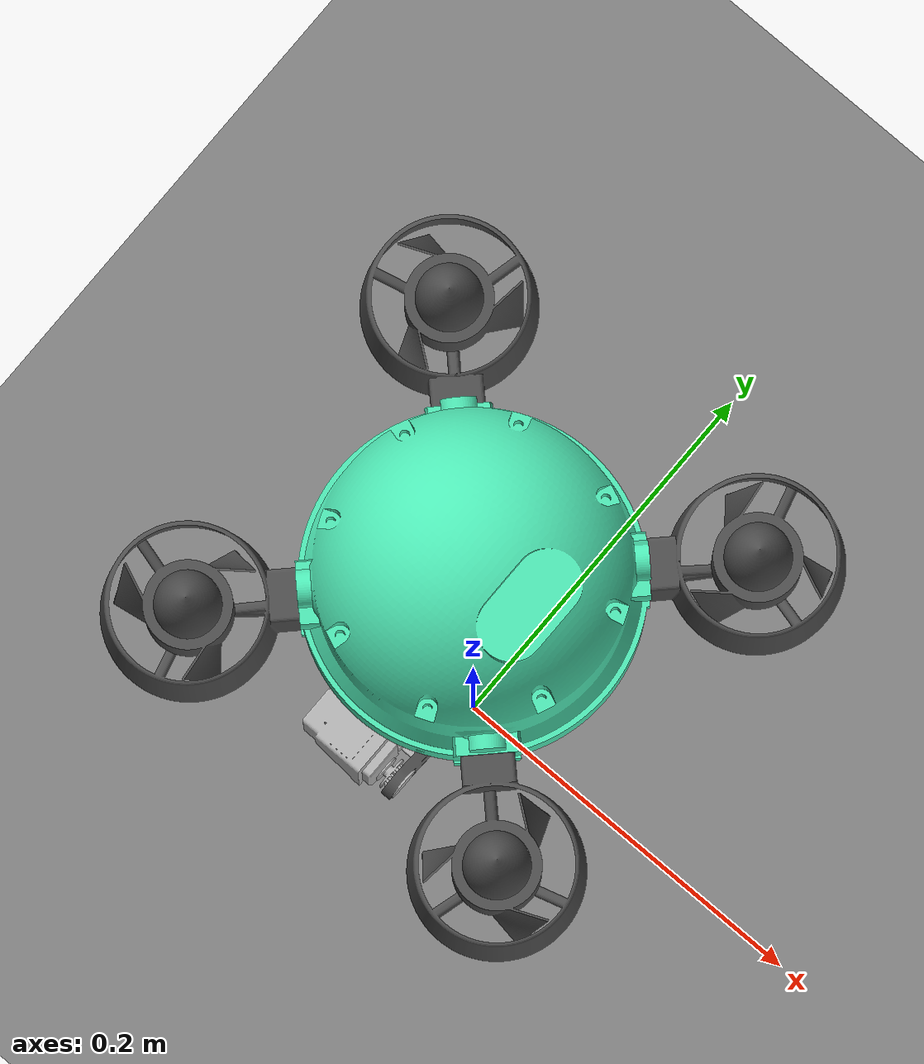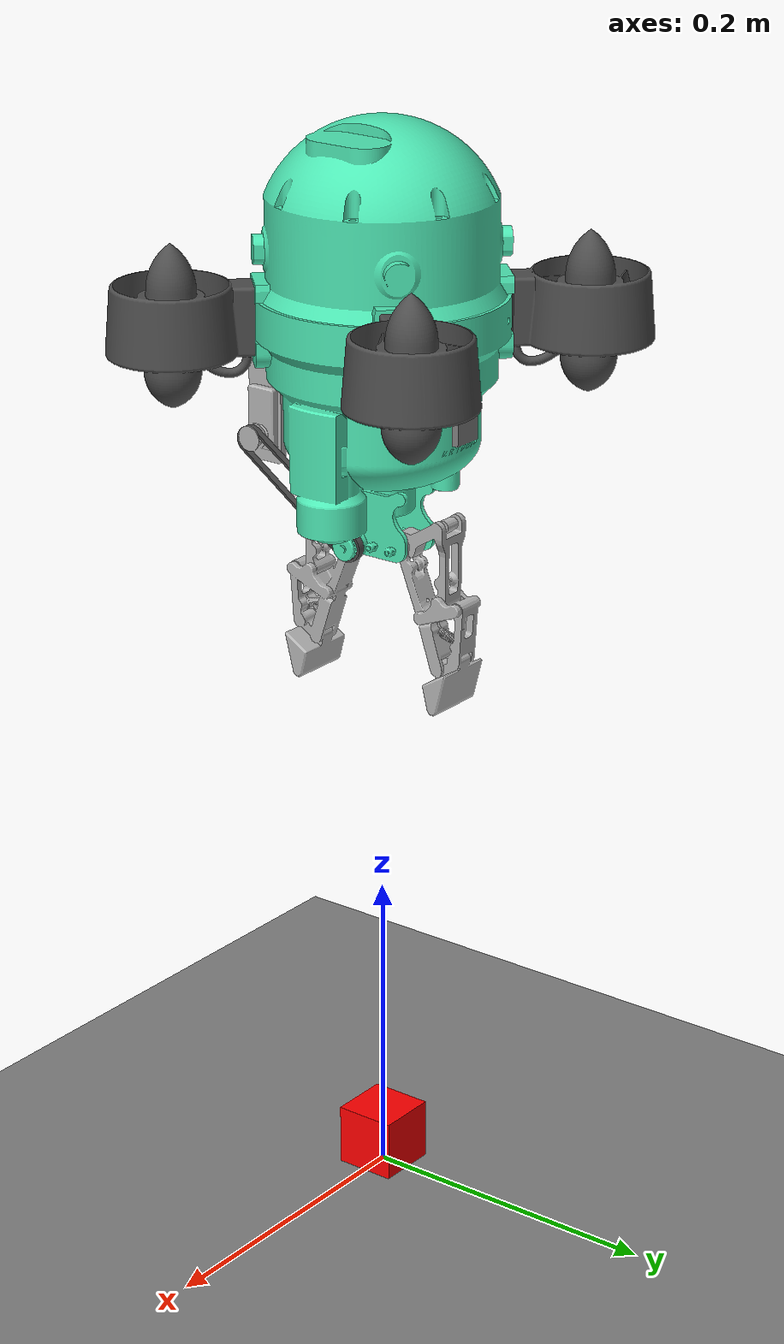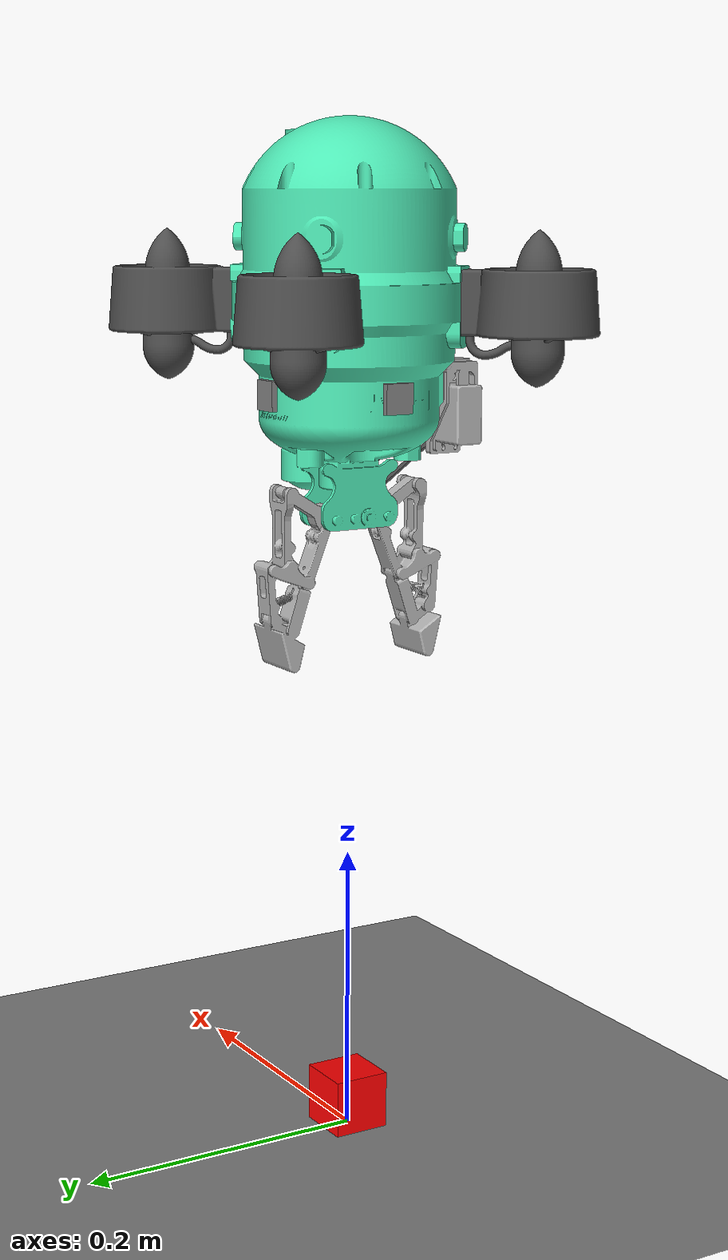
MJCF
<?xml version="1.0" encoding="utf-8"?>
<mujoco model="data_collection">
    <option timestep="0.002" gravity="0 0 0" integrator="implicitfast" density="1000" viscosity="0.0009"/>

    <compiler meshdir="/home/zb/qauv_ws/src/mujoco_pkg/mujoco_pkg/assets" angle="radian" autolimits="true"/>

    <visual>
        <global realtime="1"/>
        <quality shadowsize="4096" numslices="28" offsamples="4"/>
        <headlight diffuse="1 1 1" specular="0.5 0.5 0.5" active="1"/>
        <rgba fog="1 1 1 1" haze="1 1 1 1"/>
    </visual>

    <asset>
        <mesh file="body_no_steer.stl"/>
        <mesh file="prop_left.stl"/>
        <mesh file="prop_right.stl"/>
        <mesh file="steer.stl"/>
        <mesh file="belt.stl"/>
        <mesh file="finger.stl"/>

        <texture name="sky" type="skybox" file="/home/zb/qauv_ws/src/mujoco_pkg/mujoco_pkg/assets/desert.png" gridsize="3 4" gridlayout=".U..LFRB.D.."/>

        <texture name="ground" type="2d" builtin="checker" rgb1="0.1 0.1 0.1" rgb2="0.9 0.9 0.9" width="256" height="256" mark="cross" markrgb="0.8 0.8 0.8"/>
        <material name="ground" texture="ground" reflectance="0" texrepeat="1 1" texuniform="true"/>
    </asset>

    <worldbody>
        <light type="directional" pos="30 30 30" dir="0 -1 -1" diffuse="0.5 0.5 0.5" ambient="0.3 0.3 0.3" specular="0.5 0.5 0.5"/>

        <geom name="ground" type="plane" material="ground" pos="0 0 0" size="5 5 0.1"/>

        <body name="object" pos="0 0 0.02">
            <joint name="obj_joint" type="free"/>
            <geom name="object" type="box" rgba="1 0 0 1" size="0.02 0.02 0.02" mass="1"/>
        </body>

        <body name="qauv" pos="0 0 0.6">
            <joint name="qauv_joint" type="free"/>
            <geom name="body_no_steer" type="mesh" mesh="body_no_steer" rgba="0.3 0.9 0.7 1" mass="2.5"/>
            <geom name="prop_1" type="mesh" mesh="prop_left" pos="0.0891332 -0.0891332 -0.00535" rgba="0.3 0.3 0.3 1" mass="0.17"/>
            <geom name="prop_2" type="mesh" mesh="prop_right" pos="-0.0891332 -0.0891332 -0.00535" rgba="0.3 0.3 0.3 1" mass="0.17"/>
            <geom name="prop_3" type="mesh" mesh="prop_left" pos="-0.0891332 0.0891332 -0.00535" quat="0 0 0 1" rgba="0.3 0.3 0.3 1" mass="0.17"/>
            <geom name="prop_4" type="mesh" mesh="prop_right" pos="0.0891332 0.0891332 -0.00535" quat="0 0 0 1" rgba="0.3 0.3 0.3 1" mass="0.17"/>
            <geom name="steer" type="mesh" mesh="steer" pos="-0.0102289 -0.0650948 -0.08505" rgba="0.7 0.7 0.7 1" mass="0.09"/>
            <geom name="belt" type="mesh" mesh="belt" pos="0.0256 -0.0826079 -0.109692" rgba="0.3 0.3 0.3 1" mass="0.01"/>
            <geom name="balance_weight_1" type="box" pos="-0.062 0 -0.08" quat="0.7071 0 0 0.7071" rgba="0.5 0.5 0.5 1" size="0.01 0.002 0.01" mass="0.09"/>
            <geom name="balance_weight_2" type="box" pos="0 0.062 -0.08" quat="1 0 0 0" rgba="0.5 0.5 0.5 1" size="0.01 0.002 0.01" mass="0.11"/>

            <body name="fing_1" pos="0 -0.02 -0.163">
                <geom name="fing_1" type="mesh" mesh="finger" rgba="0.7 0.7 0.7 1" mass="0.035"/>
            </body>

            <body name="fing_2" pos="0 0.02 -0.163" quat="0 0 0 1">
                <geom name="fing_2" type="mesh" mesh="finger" rgba="0.7 0.7 0.7 1" mass="0.035"/>
            </body>

            <camera name="cam_tarcking" mode="targetbody" target="object" fovy="45" pos="-0.03 0 -0.11"/>
            <camera name="cam_fixed" mode="fixed" fovy="45" pos="-0.03 0 -0.11" quat="0.707106 0 0 0.707106"/>
        </body>

    </worldbody>
</mujoco>
